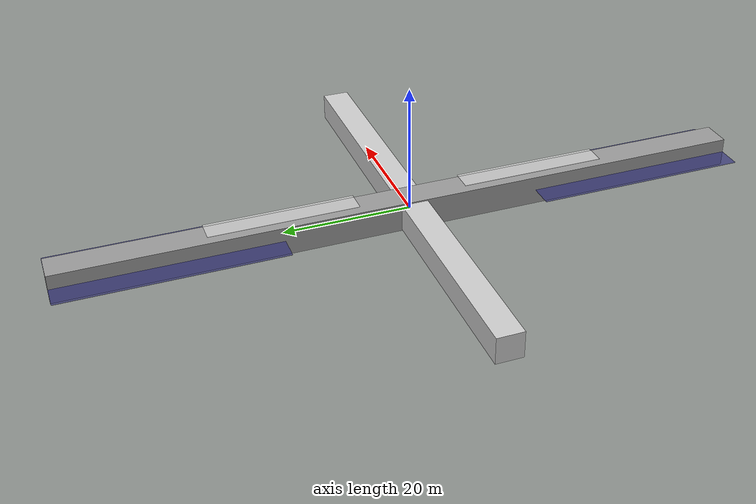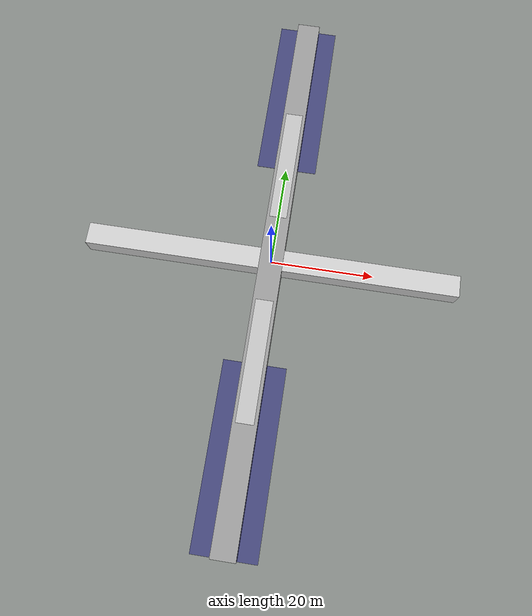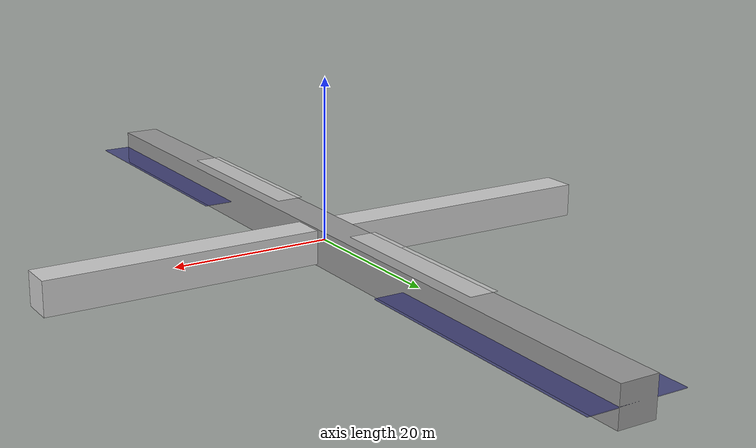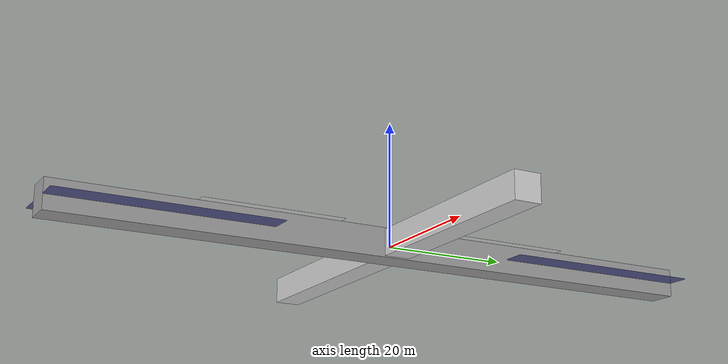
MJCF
<mujoco model="iss_rigid_body">
  <compiler angle="radian"/>
  <option timestep="0.002" gravity="0 0 0"/>

  <worldbody>
    <body name="iss" pos="0 0 0">
      <freejoint name="base"/>

      <!-- Exact mass and inertia (overrides geom-derived values) -->
      <inertial pos="0 0 0" mass="420000"
                diaginertia="128000000 107000000 201000000"/>

      <!-- Visual geometry: pressurized modules (along X) -->
      <geom name="modules" type="box" size="36.5 2.1 2.1"
            rgba="0.8 0.8 0.8 1" mass="0"/>

      <!-- Visual geometry: truss (along Y, cross-track) -->
      <geom name="truss" type="box" size="2.3 54.25 2.3"
            rgba="0.6 0.6 0.6 1" mass="0"/>

      <!-- Visual: port solar arrays (−Y side) -->
      <geom name="sa_port" type="box" size="6.0 17.0 0.05"
            pos="0 -37.25 0" rgba="0.2 0.2 0.5 0.7" mass="0"/>

      <!-- Visual: starboard solar arrays (+Y side) -->
      <geom name="sa_starboard" type="box" size="6.0 17.0 0.05"
            pos="0 37.25 0" rgba="0.2 0.2 0.5 0.7" mass="0"/>

      <!-- Visual: radiators (port) -->
      <geom name="rad_port" type="box" size="1.7 11.5 0.03"
            pos="0 -20.0 3.0" rgba="0.9 0.9 0.9 0.6" mass="0"/>

      <!-- Visual: radiators (starboard) -->
      <geom name="rad_starboard" type="box" size="1.7 11.5 0.03"
            pos="0 20.0 3.0" rgba="0.9 0.9 0.9 0.6" mass="0"/>
    </body>
  </worldbody>
</mujoco>
